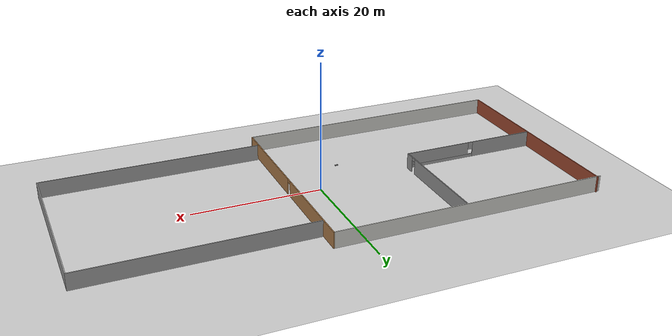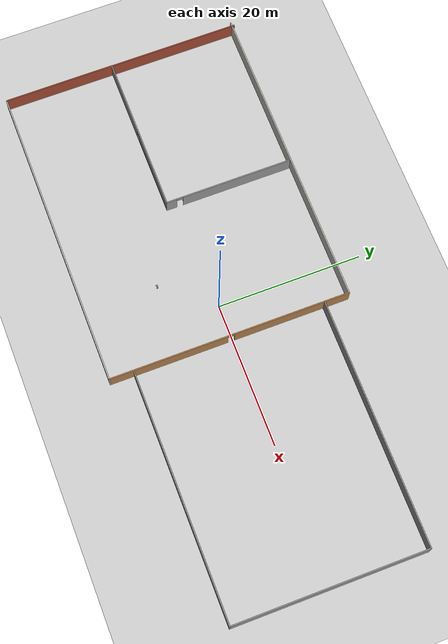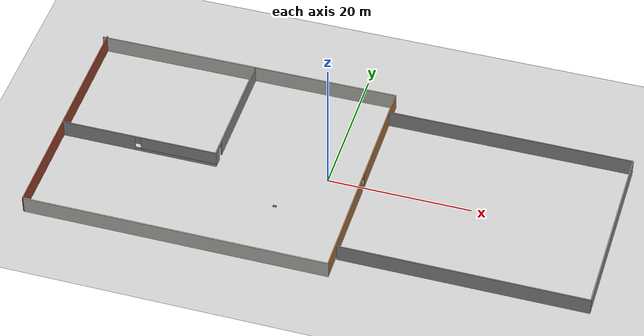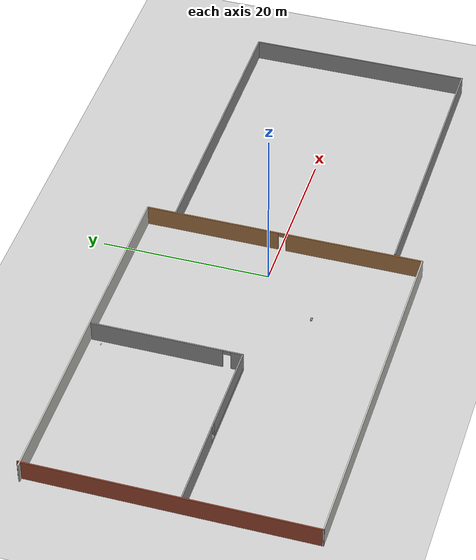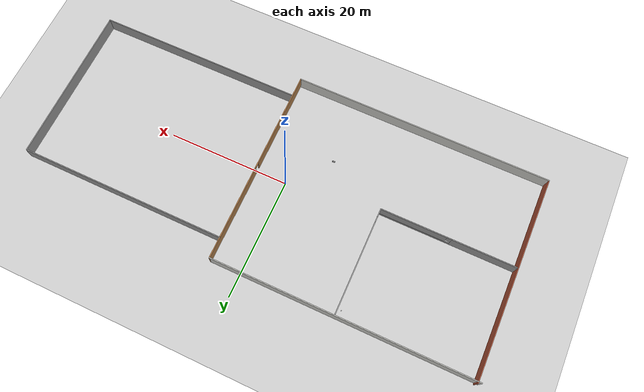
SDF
<sdf version="1.6">
 <world name="default">
  <model name="ground_plane">
   <static>1</static>
   <link name="link">
    <collision name="collision">
     <geometry><plane><normal>0 0 1</normal><size>100 100</size></plane></geometry>
     <surface><friction><ode><mu>100</mu><mu2>50</mu2></ode></friction></surface>
    </collision>
    <visual name="visual">
     <cast_shadows>0</cast_shadows>
     <geometry><plane><normal>0 0 1</normal><size>100 100</size></plane></geometry>
     <material>
      <script><uri>file://media/materials/scripts/gazebo.material</uri><name>Gazebo/Grey</name></script>
     </material>
    </visual>
   </link>
  </model>
  <model name="warehouseModel">
   <pose>0.6144 -0.1884 0 0 -0 0</pose>
   <link name="Wall_0">
    <collision name="Wall_0_Collision">
     <geometry><box><size>43 0.15 2.5</size></box></geometry>
     <pose>0 0 1.25 0 -0 0</pose>
    </collision>
    <visual name="Wall_0_Visual">
     <pose>0 0 1.25 0 -0 0</pose>
     <geometry><box><size>43 0.15 2.5</size></box></geometry>
     <material>
      <script><uri>file://media/materials/scripts/gazebo.material</uri><name>Gazebo/CeilingTiled</name></script>
      <ambient>1 1 1 1</ambient>
     </material>
     <meta><layer>0</layer></meta>
    </visual>
    <pose>-17.0835 16.425 0 0 -0 0</pose>
   </link>
   <link name="Wall_1">
    <pose>4.34146 -0.125 0 0 0 -1.5708</pose>
    <visual name="Wall_1_Visual_0">
     <pose>-8.60332 0 1.25 0 -0 0</pose>
     <geometry><box><size>16.0434 0.15 2.5</size></box></geometry>
     <material>
      <script><uri>file://media/materials/scripts/gazebo.material</uri><name>Gazebo/Wood</name></script>
      <ambient>0.435294 0.796078 0.67451 1</ambient>
     </material>
     <meta><layer>0</layer></meta>
    </visual>
    <collision name="Wall_1_Collision_0">
     <geometry><box><size>16.0434 0.15 2.5</size></box></geometry>
     <pose>-8.60332 0 1.25 0 -0 0</pose>
    </collision>
    <visual name="Wall_1_Visual_1">
     <pose>8.47167 0 1.25 0 -0 0</pose>
     <geometry><box><size>16.3066 0.15 2.5</size></box></geometry>
     <material>
      <script><uri>file://media/materials/scripts/gazebo.material</uri><name>Gazebo/Wood</name></script>
      <ambient>0.435294 0.796078 0.67451 1</ambient>
     </material>
     <meta><layer>0</layer></meta>
    </visual>
    <collision name="Wall_1_Collision_1">
     <geometry><box><size>16.3066 0.15 2.5</size></box></geometry>
     <pose>8.47167 0 1.25 0 -0 0</pose>
    </collision>
    <visual name="Wall_1_Visual_2">
     <pose>-0.131649 0 2.25 0 -0 0</pose>
     <geometry><box><size>0.9 0.15 0.5</size></box></geometry>
     <material>
      <script><uri>file://media/materials/scripts/gazebo.material</uri><name>Gazebo/Wood</name></script>
      <ambient>0.435294 0.796078 0.67451 1</ambient>
     </material>
     <meta><layer>0</layer></meta>
    </visual>
    <collision name="Wall_1_Collision_2">
     <geometry><box><size>0.9 0.15 0.5</size></box></geometry>
     <pose>-0.131649 0 2.25 0 -0 0</pose>
    </collision>
   </link>
   <link name="Wall_10">
    <collision name="Wall_10_Collision">
     <geometry><box><size>34 0.15 2.5</size></box></geometry>
     <pose>0 0 1.25 0 -0 0</pose>
    </collision>
    <visual name="Wall_10_Visual">
     <pose>0 0 1.25 0 -0 0</pose>
     <geometry><box><size>34 0.15 2.5</size></box></geometry>
     <material>
      <script><uri>file://media/materials/scripts/gazebo.material</uri><name>Gazebo/Grey</name></script>
      <ambient>1 1 1 1</ambient>
     </material>
     <meta><layer>0</layer></meta>
    </visual>
    <pose>21.5835 -13.3779 0 0 -0 3.14159</pose>
   </link>
   <link name="Wall_2">
    <collision name="Wall_2_Collision">
     <geometry><box><size>42.5 0.15 2.5</size></box></geometry>
     <pose>0 0 1.25 0 -0 0</pose>
    </collision>
    <visual name="Wall_2_Visual">
     <pose>0 0 1.25 0 -0 0</pose>
     <geometry><box><size>42.5 0.15 2.5</size></box></geometry>
     <material>
      <script><uri>file://media/materials/scripts/gazebo.material</uri><name>Gazebo/CeilingTiled</name></script>
      <ambient>0.435294 0.796078 0.67451 1</ambient>
     </material>
     <meta><layer>0</layer></meta>
    </visual>
    <pose>-16.8335 -16.675 0 0 -0 3.14159</pose>
   </link>
   <link name="Wall_3">
    <collision name="Wall_3_Collision">
     <geometry><box><size>33.5 0.15 2.5</size></box></geometry>
     <pose>0 0 1.25 0 -0 0</pose>
    </collision>
    <visual name="Wall_3_Visual">
     <pose>0 0 1.25 0 -0 0</pose>
     <geometry><box><size>33.5 0.15 2.5</size></box></geometry>
     <material>
      <script><uri>file://media/materials/scripts/gazebo.material</uri><name>Gazebo/Bricks</name></script>
      <ambient>0.996078 0.47451 0.0196078 1</ambient>
     </material>
     <meta><layer>0</layer></meta>
    </visual>
    <pose>-38.0085 0 0 0 -0 1.5708</pose>
   </link>
   <link name="Wall_5">
    <pose>-26.9383 -1.39551 0 0 -0 0</pose>
    <visual name="Wall_5_Visual_0">
     <pose>-5.80789 0 1.25 0 -0 0</pose>
     <geometry><box><size>10.3842 0.15 2.5</size></box></geometry>
     <material>
      <script><uri>file://media/materials/scripts/gazebo.material</uri><name>Gazebo/Grey</name></script>
      <ambient>1 1 1 1</ambient>
     </material>
     <meta><layer>0</layer></meta>
    </visual>
    <collision name="Wall_5_Collision_0">
     <geometry><box><size>10.3842 0.15 2.5</size></box></geometry>
     <pose>-5.80789 0 1.25 0 -0 0</pose>
    </collision>
    <visual name="Wall_5_Visual_1">
     <pose>5.19211 0 0.25 0 -0 0</pose>
     <geometry><box><size>11.6158 0.15 0.5</size></box></geometry>
     <material>
      <script><uri>file://media/materials/scripts/gazebo.material</uri><name>Gazebo/Grey</name></script>
      <ambient>1 1 1 1</ambient>
     </material>
     <meta><layer>0</layer></meta>
    </visual>
    <collision name="Wall_5_Collision_1">
     <geometry><box><size>11.6158 0.15 0.5</size></box></geometry>
     <pose>5.19211 0 0.25 0 -0 0</pose>
    </collision>
    <visual name="Wall_5_Visual_2">
     <pose>5.59211 0 1.5 0 -0 0</pose>
     <geometry><box><size>10.8158 0.15 2</size></box></geometry>
     <material>
      <script><uri>file://media/materials/scripts/gazebo.material</uri><name>Gazebo/Grey</name></script>
      <ambient>1 1 1 1</ambient>
     </material>
     <meta><layer>0</layer></meta>
    </visual>
    <collision name="Wall_5_Collision_2">
     <geometry><box><size>10.8158 0.15 2</size></box></geometry>
     <pose>5.59211 0 1.5 0 -0 0</pose>
    </collision>
    <visual name="Wall_5_Visual_3">
     <pose>-0.215775 0 1.9 0 -0 0</pose>
     <geometry><box><size>0.8 0.15 1.2</size></box></geometry>
     <material>
      <script><uri>file://media/materials/scripts/gazebo.material</uri><name>Gazebo/Grey</name></script>
      <ambient>1 1 1 1</ambient>
     </material>
     <meta><layer>0</layer></meta>
    </visual>
    <collision name="Wall_5_Collision_3">
     <geometry><box><size>0.8 0.15 1.2</size></box></geometry>
     <pose>-0.215775 0 1.9 0 -0 0</pose>
    </collision>
   </link>
   <link name="Wall_6">
    <pose>-16.0133 7.40449 0 0 -0 1.5708</pose>
    <visual name="Wall_6_Visual_0">
     <pose>-8.13743 0 1.25 0 -0 0</pose>
     <geometry><box><size>1.47513 0.15 2.5</size></box></geometry>
     <material>
      <script><uri>file://media/materials/scripts/gazebo.material</uri><name>Gazebo/Grey</name></script>
      <ambient>1 1 1 1</ambient>
     </material>
     <meta><layer>0</layer></meta>
    </visual>
    <collision name="Wall_6_Collision_0">
     <geometry><box><size>1.47513 0.15 2.5</size></box></geometry>
     <pose>-8.13743 0 1.25 0 -0 0</pose>
    </collision>
    <visual name="Wall_6_Visual_1">
     <pose>1.18756 0 1.25 0 -0 0</pose>
     <geometry><box><size>15.3749 0.15 2.5</size></box></geometry>
     <material>
      <script><uri>file://media/materials/scripts/gazebo.material</uri><name>Gazebo/Grey</name></script>
      <ambient>1 1 1 1</ambient>
     </material>
     <meta><layer>0</layer></meta>
    </visual>
    <collision name="Wall_6_Collision_1">
     <geometry><box><size>15.3749 0.15 2.5</size></box></geometry>
     <pose>1.18756 0 1.25 0 -0 0</pose>
    </collision>
    <visual name="Wall_6_Visual_2">
     <pose>-6.94987 0 2.25 0 -0 0</pose>
     <geometry><box><size>0.9 0.15 0.5</size></box></geometry>
     <material>
      <script><uri>file://media/materials/scripts/gazebo.material</uri><name>Gazebo/Grey</name></script>
      <ambient>1 1 1 1</ambient>
     </material>
     <meta><layer>0</layer></meta>
    </visual>
    <collision name="Wall_6_Collision_2">
     <geometry><box><size>0.9 0.15 0.5</size></box></geometry>
     <pose>-6.94987 0 2.25 0 -0 0</pose>
    </collision>
   </link>
   <link name="Wall_8">
    <collision name="Wall_8_Collision">
     <geometry><box><size>34.25 0.15 2.5</size></box></geometry>
     <pose>0 0 1.25 0 -0 0</pose>
    </collision>
    <visual name="Wall_8_Visual">
     <pose>0 0 1.25 0 -0 0</pose>
     <geometry><box><size>34.25 0.15 2.5</size></box></geometry>
     <material>
      <script><uri>file://media/materials/scripts/gazebo.material</uri><name>Gazebo/Grey</name></script>
      <ambient>1 1 1 1</ambient>
     </material>
     <meta><layer>0</layer></meta>
    </visual>
    <pose>21.4585 12.9721 0 0 -0 0</pose>
   </link>
   <link name="Wall_9">
    <collision name="Wall_9_Collision">
     <geometry><box><size>26.5 0.15 2.5</size></box></geometry>
     <pose>0 0 1.25 0 -0 0</pose>
    </collision>
    <visual name="Wall_9_Visual">
     <pose>0 0 1.25 0 -0 0</pose>
     <geometry><box><size>26.5 0.15 2.5</size></box></geometry>
     <material>
      <script><uri>file://media/materials/scripts/gazebo.material</uri><name>Gazebo/Grey</name></script>
      <ambient>1 1 1 1</ambient>
     </material>
     <meta><layer>0</layer></meta>
    </visual>
    <pose>38.5085 -0.20291 0 0 0 -1.5708</pose>
   </link>
   <static>1</static>
  </model>
  <model name="vehicleRobot_0">
   <link name="link_3">
    <pose>0 -0.0017 0 0 -0 0</pose>
    <inertial>
     <mass>1</mass>
     <inertia>
      <ixx>0.166667</ixx>
      <ixy>0</ixy>
      <ixz>0</ixz>
      <iyy>0.166667</iyy>
      <iyz>0</iyz>
      <izz>0.166667</izz>
     </inertia>
    </inertial>
    <visual name="visual">
     <geometry><box><size>0.5 0.15 0.1</size></box></geometry>
     <material>
      <lighting>1</lighting>
      <script><uri>file://media/materials/scripts/gazebo.material</uri><name>Gazebo/Grey</name></script>
      <shader type="pixel"><normal_map>__default__</normal_map></shader>
      <ambient>0.3 0.3 0.3 1</ambient>
      <diffuse>0.7 0.7 0.7 1</diffuse>
      <specular>0.01 0.01 0.01 1</specular>
      <emissive>0 0 0 1</emissive>
     </material>
    </visual>
    <collision name="collision">
     <geometry><box><size>0.5 0.15 0.1</size></box></geometry>
     <surface>
      <friction>
       <ode><mu>1</mu><mu2>1</mu2><fdir1>0 0 0</fdir1><slip1>0</slip1><slip2>0</slip2></ode>
       <torsional>
        <coefficient>1</coefficient>
        <patch_radius>0</patch_radius>
        <surface_radius>0</surface_radius>
        <use_patch_radius>1</use_patch_radius>
        <ode><slip>0</slip></ode>
       </torsional>
      </friction>
      <bounce><restitution_coefficient>0</restitution_coefficient><threshold>1e+06</threshold></bounce>
      <contact>
       <collide_without_contact>0</collide_without_contact>
       <collide_without_contact_bitmask>1</collide_without_contact_bitmask>
       <collide_bitmask>1</collide_bitmask>
       <ode>
        <soft_cfm>0</soft_cfm>
        <soft_erp>0.2</soft_erp>
        <kp>1e+13</kp>
        <kd>1</kd>
        <max_vel>0.01</max_vel>
        <min_depth>0</min_depth>
       </ode>
       <bullet>
        <split_impulse>1</split_impulse>
        <split_impulse_penetration_threshold>-0.01</split_impulse_penetration_threshold>
        <soft_cfm>0</soft_cfm>
        <soft_erp>0.2</soft_erp>
        <kp>1e+13</kp>
        <kd>1</kd>
       </bullet>
      </contact>
     </surface>
    </collision>
   </link>
   <link name="link_4_clone">
    <pose>-0.15 -0.0917 0 1.5708 -0 0</pose>
    <inertial>
     <mass>1</mass>
     <inertia><ixx>0.145833</ixx><ixy>0</ixy><ixz>0</ixz><iyy>0.145833</iyy><iyz>0</iyz><izz>0.125</izz></inertia>
    </inertial>
    <visual name="visual">
     <geometry><cylinder><radius>0.1</radius><length>0.03</length></cylinder></geometry>
     <material>
      <lighting>1</lighting>
      <script><uri>file://media/materials/scripts/gazebo.material</uri><name>Gazebo/Grey</name></script>
      <shader type="pixel"><normal_map>__default__</normal_map></shader>
      <ambient>0.3 0.3 0.3 1</ambient>
      <diffuse>0.7 0.7 0.7 1</diffuse>
      <specular>0.01 0.01 0.01 1</specular>
      <emissive>0 0 0 1</emissive>
     </material>
    </visual>
    <collision name="collision">
     <geometry><cylinder><radius>0.1</radius><length>0.03</length></cylinder></geometry>
     <surface>
      <friction>
       <ode><mu>1</mu><mu2>1</mu2><fdir1>0 0 0</fdir1><slip1>0</slip1><slip2>0</slip2></ode>
       <torsional>
        <coefficient>1</coefficient>
        <patch_radius>0</patch_radius>
        <surface_radius>0</surface_radius>
        <use_patch_radius>1</use_patch_radius>
        <ode><slip>0</slip></ode>
       </torsional>
      </friction>
      <bounce><restitution_coefficient>0</restitution_coefficient><threshold>1e+06</threshold></bounce>
      <contact>
       <collide_without_contact>0</collide_without_contact>
       <collide_without_contact_bitmask>1</collide_without_contact_bitmask>
       <collide_bitmask>1</collide_bitmask>
       <ode>
        <soft_cfm>0</soft_cfm>
        <soft_erp>0.2</soft_erp>
        <kp>1e+13</kp>
        <kd>1</kd>
        <max_vel>0.01</max_vel>
        <min_depth>0</min_depth>
       </ode>
       <bullet>
        <split_impulse>1</split_impulse>
        <split_impulse_penetration_threshold>-0.01</split_impulse_penetration_threshold>
        <soft_cfm>0</soft_cfm>
        <soft_erp>0.2</soft_erp>
        <kp>1e+13</kp>
        <kd>1</kd>
       </bullet>
      </contact>
     </surface>
    </collision>
   </link>
   <link name="link_4_clone_0">
    <pose>0.15 -0.0917 -0 1.5708 -0 0</pose>
    <inertial>
     <mass>1</mass>
     <inertia><ixx>0.145833</ixx><ixy>0</ixy><ixz>0</ixz><iyy>0.145833</iyy><iyz>0</iyz><izz>0.125</izz></inertia>
    </inertial>
    <visual name="visual">
     <geometry><cylinder><radius>0.1</radius><length>0.03</length></cylinder></geometry>
     <material>
      <lighting>1</lighting>
      <script><uri>file://media/materials/scripts/gazebo.material</uri><name>Gazebo/Grey</name></script>
      <shader type="pixel"><normal_map>__default__</normal_map></shader>
      <ambient>0.3 0.3 0.3 1</ambient>
      <diffuse>0.7 0.7 0.7 1</diffuse>
      <specular>0.01 0.01 0.01 1</specular>
      <emissive>0 0 0 1</emissive>
     </material>
    </visual>
    <collision name="collision">
     <geometry><cylinder><radius>0.1</radius><length>0.03</length></cylinder></geometry>
     <surface>
      <friction>
       <ode><mu>1</mu><mu2>1</mu2><fdir1>0 0 0</fdir1><slip1>0</slip1><slip2>0</slip2></ode>
       <torsional>
        <coefficient>1</coefficient>
        <patch_radius>0</patch_radius>
        <surface_radius>0</surface_radius>
        <use_patch_radius>1</use_patch_radius>
        <ode><slip>0</slip></ode>
       </torsional>
      </friction>
      <bounce><restitution_coefficient>0</restitution_coefficient><threshold>1e+06</threshold></bounce>
      <contact>
       <collide_without_contact>0</collide_without_contact>
       <collide_without_contact_bitmask>1</collide_without_contact_bitmask>
       <collide_bitmask>1</collide_bitmask>
       <ode>
        <soft_cfm>0</soft_cfm>
        <soft_erp>0.2</soft_erp>
        <kp>1e+13</kp>
        <kd>1</kd>
        <max_vel>0.01</max_vel>
        <min_depth>0</min_depth>
       </ode>
       <bullet>
        <split_impulse>1</split_impulse>
        <split_impulse_penetration_threshold>-0.01</split_impulse_penetration_threshold>
        <soft_cfm>0</soft_cfm>
        <soft_erp>0.2</soft_erp>
        <kp>1e+13</kp>
        <kd>1</kd>
       </bullet>
      </contact>
     </surface>
    </collision>
   </link>
   <link name="link_4_clone_1">
    <pose>-0.15 0.09255 0 1.5708 -0 0</pose>
    <inertial>
     <mass>1</mass>
     <inertia><ixx>0.145833</ixx><ixy>0</ixy><ixz>0</ixz><iyy>0.145833</iyy><iyz>0</iyz><izz>0.125</izz></inertia>
    </inertial>
    <visual name="visual">
     <geometry><cylinder><radius>0.1</radius><length>0.03</length></cylinder></geometry>
     <material>
      <lighting>1</lighting>
      <script><uri>file://media/materials/scripts/gazebo.material</uri><name>Gazebo/Grey</name></script>
      <shader type="pixel"><normal_map>__default__</normal_map></shader>
      <ambient>0.3 0.3 0.3 1</ambient>
      <diffuse>0.7 0.7 0.7 1</diffuse>
      <specular>0.01 0.01 0.01 1</specular>
      <emissive>0 0 0 1</emissive>
     </material>
    </visual>
    <collision name="collision">
     <geometry><cylinder><radius>0.1</radius><length>0.03</length></cylinder></geometry>
     <surface>
      <friction>
       <ode><mu>1</mu><mu2>1</mu2><fdir1>0 0 0</fdir1><slip1>0</slip1><slip2>0</slip2></ode>
       <torsional>
        <coefficient>1</coefficient>
        <patch_radius>0</patch_radius>
        <surface_radius>0</surface_radius>
        <use_patch_radius>1</use_patch_radius>
        <ode><slip>0</slip></ode>
       </torsional>
      </friction>
      <bounce><restitution_coefficient>0</restitution_coefficient><threshold>1e+06</threshold></bounce>
      <contact>
       <collide_without_contact>0</collide_without_contact>
       <collide_without_contact_bitmask>1</collide_without_contact_bitmask>
       <collide_bitmask>1</collide_bitmask>
       <ode>
        <soft_cfm>0</soft_cfm>
        <soft_erp>0.2</soft_erp>
        <kp>1e+13</kp>
        <kd>1</kd>
        <max_vel>0.01</max_vel>
        <min_depth>0</min_depth>
       </ode>
       <bullet>
        <split_impulse>1</split_impulse>
        <split_impulse_penetration_threshold>-0.01</split_impulse_penetration_threshold>
        <soft_cfm>0</soft_cfm>
        <soft_erp>0.2</soft_erp>
        <kp>1e+13</kp>
        <kd>1</kd>
       </bullet>
      </contact>
     </surface>
    </collision>
   </link>
   <link name="link_4_clone_1_clone">
    <pose>0.15 0.09255 0 1.5708 -0 0</pose>
    <inertial>
     <mass>1</mass>
     <inertia><ixx>0.145833</ixx><ixy>0</ixy><ixz>0</ixz><iyy>0.145833</iyy><iyz>0</iyz><izz>0.125</izz></inertia>
    </inertial>
    <visual name="visual">
     <geometry><cylinder><radius>0.1</radius><length>0.03</length></cylinder></geometry>
     <material>
      <lighting>1</lighting>
      <script><uri>file://media/materials/scripts/gazebo.material</uri><name>Gazebo/Grey</name></script>
      <shader type="pixel"><normal_map>__default__</normal_map></shader>
      <ambient>0.3 0.3 0.3 1</ambient>
      <diffuse>0.7 0.7 0.7 1</diffuse>
      <specular>0.01 0.01 0.01 1</specular>
      <emissive>0 0 0 1</emissive>
     </material>
    </visual>
    <collision name="collision">
     <geometry><cylinder><radius>0.1</radius><length>0.03</length></cylinder></geometry>
     <surface>
      <friction>
       <ode><mu>1</mu><mu2>1</mu2><fdir1>0 0 0</fdir1><slip1>0</slip1><slip2>0</slip2></ode>
       <torsional>
        <coefficient>1</coefficient>
        <patch_radius>0</patch_radius>
        <surface_radius>0</surface_radius>
        <use_patch_radius>1</use_patch_radius>
        <ode><slip>0</slip></ode>
       </torsional>
      </friction>
      <bounce><restitution_coefficient>0</restitution_coefficient><threshold>1e+06</threshold></bounce>
      <contact>
       <collide_without_contact>0</collide_without_contact>
       <collide_without_contact_bitmask>1</collide_without_contact_bitmask>
       <collide_bitmask>1</collide_bitmask>
       <ode>
        <soft_cfm>0</soft_cfm>
        <soft_erp>0.2</soft_erp>
        <kp>1e+13</kp>
        <kd>1</kd>
        <max_vel>0.01</max_vel>
        <min_depth>0</min_depth>
       </ode>
       <bullet>
        <split_impulse>1</split_impulse>
        <split_impulse_penetration_threshold>-0.01</split_impulse_penetration_threshold>
        <soft_cfm>0</soft_cfm>
        <soft_erp>0.2</soft_erp>
        <kp>1e+13</kp>
        <kd>1</kd>
       </bullet>
      </contact>
     </surface>
    </collision>
   </link>
   <joint name="link_3_JOINT_2" type="revolute">
    <parent>link_3</parent>
    <child>link_4_clone_0</child>
    <axis>
     <xyz>0 0 1</xyz>
     <use_parent_model_frame>0</use_parent_model_frame>
     <limit>
      <lower>-1.79769e+308</lower>
      <upper>1.79769e+308</upper>
      <effort>-1</effort>
      <velocity>-1</velocity>
     </limit>
     <dynamics>
      <spring_reference>0</spring_reference>
      <spring_stiffness>0</spring_stiffness>
      <damping>0</damping>
      <friction>0</friction>
     </dynamics>
    </axis>
    <physics>
     <ode><limit><cfm>0</cfm><erp>0.2</erp></limit><suspension><cfm>0</cfm><erp>0.2</erp></suspension></ode>
    </physics>
   </joint>
   <joint name="link_3_JOINT_3" type="revolute">
    <parent>link_3</parent>
    <child>link_4_clone</child>
    <axis>
     <xyz>0 0 1</xyz>
     <use_parent_model_frame>0</use_parent_model_frame>
     <limit>
      <lower>-1.79769e+308</lower>
      <upper>1.79769e+308</upper>
      <effort>-1</effort>
      <velocity>-1</velocity>
     </limit>
     <dynamics>
      <spring_reference>0</spring_reference>
      <spring_stiffness>0</spring_stiffness>
      <damping>0</damping>
     </dynamics>
    </axis>
    <physics>
     <ode><limit><cfm>0</cfm><erp>0.2</erp></limit><suspension><cfm>0</cfm><erp>0.2</erp></suspension></ode>
    </physics>
   </joint>
   <joint name="link_3_JOINT_8" type="revolute">
    <parent>link_3</parent>
    <child>link_4_clone_1_clone</child>
    <axis>
     <xyz>0 0 1</xyz>
     <use_parent_model_frame>0</use_parent_model_frame>
     <limit>
      <lower>-1.79769e+308</lower>
      <upper>1.79769e+308</upper>
      <effort>-1</effort>
      <velocity>-1</velocity>
     </limit>
     <dynamics>
      <spring_reference>0</spring_reference>
      <spring_stiffness>0</spring_stiffness>
      <damping>0</damping>
     </dynamics>
    </axis>
    <physics>
     <ode><limit><cfm>0</cfm><erp>0.2</erp></limit><suspension><cfm>0</cfm><erp>0.2</erp></suspension></ode>
    </physics>
   </joint>
   <joint name="link_3_JOINT_9" type="revolute">
    <parent>link_3</parent>
    <child>link_4_clone_1</child>
    <axis>
     <xyz>0 0 1</xyz>
     <use_parent_model_frame>0</use_parent_model_frame>
     <limit>
      <lower>-1.79769e+308</lower>
      <upper>1.79769e+308</upper>
      <effort>-1</effort>
      <velocity>-1</velocity>
     </limit>
     <dynamics>
      <spring_reference>0</spring_reference>
      <spring_stiffness>0</spring_stiffness>
      <damping>0</damping>
     </dynamics>
    </axis>
    <physics>
     <ode><limit><cfm>0</cfm><erp>0.2</erp></limit><suspension><cfm>0</cfm><erp>0.2</erp></suspension></ode>
    </physics>
   </joint>
   <static>0</static>
   <pose>-5.48034 -6.66097 0.100001 1e-06 -4e-06 -0.001775</pose>
  </model>
  <model name="my_ball">
   <link name="link_0">
    <inertial>
     <mass>1</mass>
     <inertia><ixx>0.1</ixx><ixy>0</ixy><ixz>0</ixz><iyy>0.1</iyy><iyz>0</iyz><izz>0.1</izz></inertia>
    </inertial>
    <visual name="visual">
     <geometry><sphere><radius>0.1</radius></sphere></geometry>
     <material>
      <lighting>1</lighting>
      <script><uri>file://media/materials/scripts/gazebo.material</uri><name>Gazebo/White</name></script>
      <shader type="pixel"><normal_map>__default__</normal_map></shader>
      <ambient>1 1 1 1</ambient>
      <diffuse>1 1 1 1</diffuse>
      <specular>1 1 1 1</specular>
      <emissive>1 1 1 1</emissive>
     </material>
    </visual>
    <collision name="collision">
     <geometry><sphere><radius>0.1</radius></sphere></geometry>
     <surface>
      <friction>
       <ode><mu>1</mu><mu2>1</mu2><fdir1>0 0 0</fdir1><slip1>0</slip1><slip2>0</slip2></ode>
       <torsional>
        <coefficient>1</coefficient>
        <patch_radius>0</patch_radius>
        <surface_radius>0</surface_radius>
        <use_patch_radius>1</use_patch_radius>
        <ode><slip>0</slip></ode>
       </torsional>
      </friction>
      <bounce><restitution_coefficient>0</restitution_coefficient><threshold>1e+06</threshold></bounce>
      <contact>
       <collide_without_contact>0</collide_without_contact>
       <collide_without_contact_bitmask>1</collide_without_contact_bitmask>
       <collide_bitmask>1</collide_bitmask>
       <ode>
        <soft_cfm>0</soft_cfm>
        <soft_erp>0.2</soft_erp>
        <kp>1e+13</kp>
        <kd>1</kd>
        <max_vel>0.01</max_vel>
        <min_depth>0</min_depth>
       </ode>
       <bullet>
        <split_impulse>1</split_impulse>
        <split_impulse_penetration_threshold>-0.01</split_impulse_penetration_threshold>
        <soft_cfm>0</soft_cfm>
        <soft_erp>0.2</soft_erp>
        <kp>1e+13</kp>
        <kd>1</kd>
       </bullet>
      </contact>
     </surface>
    </collision>
   </link>
   <static>0</static>
   <pose>-16.0026 14.7937 0.1 0 -0 0</pose>
  </model>
 </world>
</sdf>
